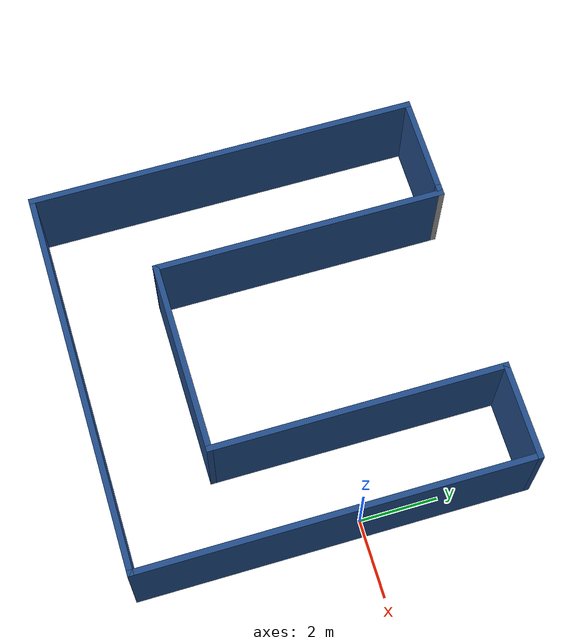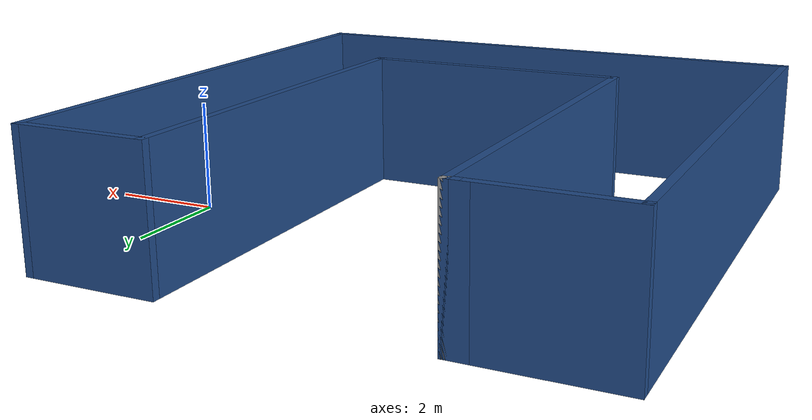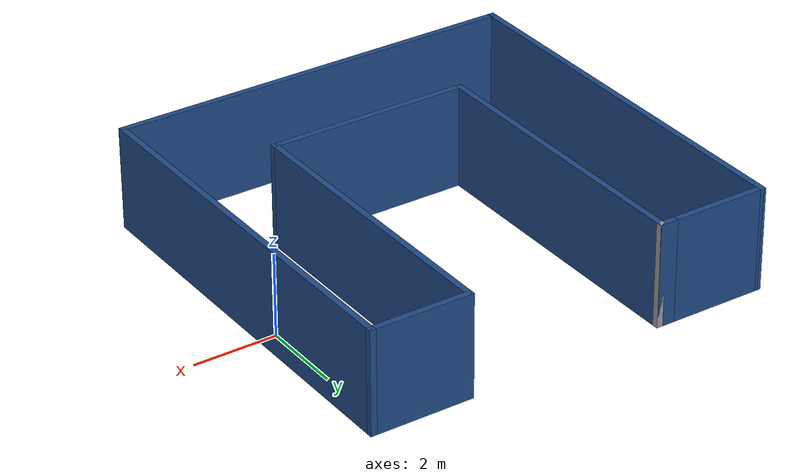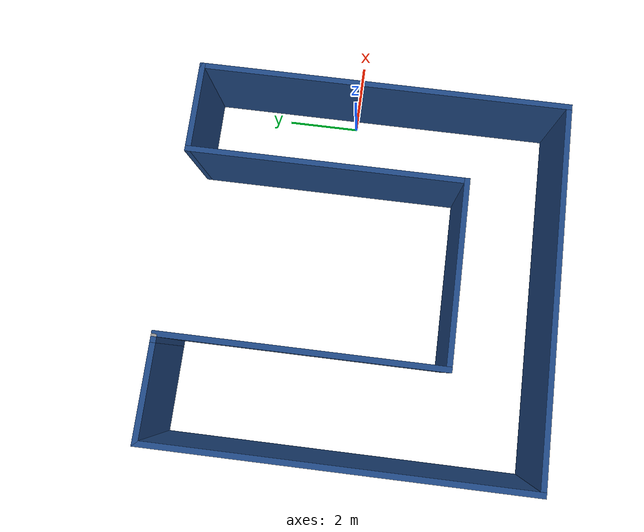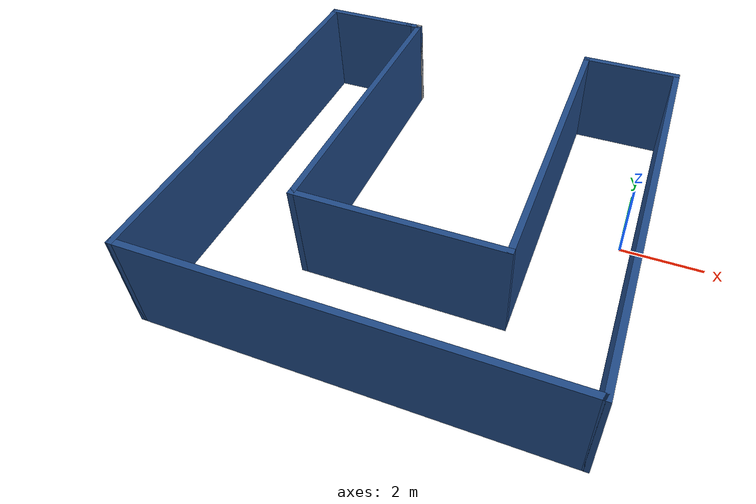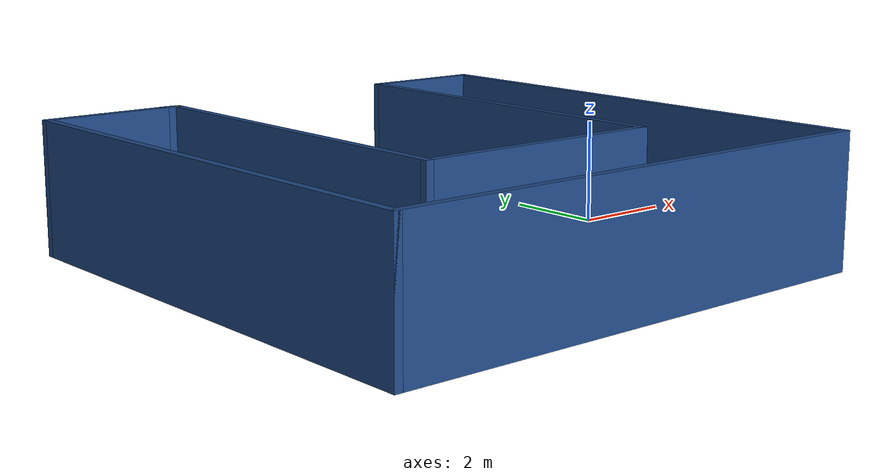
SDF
<?xml version='1.0'?>
<sdf version='1.7'>
  <model name='mybuilding'>
    <pose>-4.58469 -0.74124 0 0 -0 0</pose>
    <link name='Wall_10'>
      <collision name='Wall_10_Collision'>
        <geometry>
          <box>
            <size>7.5 0.15 2.5</size>
          </box>
        </geometry>
        <pose>0 0 1.25 0 -0 0</pose>
      </collision>
      <visual name='Wall_10_Visual'>
        <pose>0 0 1.25 0 -0 0</pose>
        <geometry>
          <box>
            <size>7.5 0.15 2.5</size>
          </box>
        </geometry>
        <material>
          <script>
            <uri>file://media/materials/scripts/gazebo.material</uri>
            <name>Gazebo/Grey</name>
          </script>
          <ambient>0.12549 0.290196 0.529412 1</ambient>
        </material>
        <meta>
          <layer>0</layer>
        </meta>
      </visual>
      <pose>2.575 1.25 0 0 -0 -1.5708</pose>
    </link>
    <link name='Wall_11'>
      <collision name='Wall_11_Collision'>
        <geometry>
          <box>
            <size>5 0.15 2.5</size>
          </box>
        </geometry>
        <pose>0 0 1.25 0 -0 0</pose>
      </collision>
      <visual name='Wall_11_Visual'>
        <pose>0 0 1.25 0 -0 0</pose>
        <geometry>
          <box>
            <size>5 0.15 2.5</size>
          </box>
        </geometry>
        <material>
          <script>
            <uri>file://media/materials/scripts/gazebo.material</uri>
            <name>Gazebo/Grey</name>
          </script>
          <ambient>0.12549 0.290196 0.529412 1</ambient>
        </material>
        <meta>
          <layer>0</layer>
        </meta>
      </visual>
      <pose>0.15 -2.425 0 0 -0 3.14159</pose>
    </link>
    <link name='Wall_12'>
      <collision name='Wall_12_Collision'>
        <geometry>
          <box>
            <size>7.5 0.15 2.5</size>
          </box>
        </geometry>
        <pose>0 0 1.25 0 -0 0</pose>
      </collision>
      <visual name='Wall_12_Visual'>
        <pose>0 0 1.25 0 -0 0</pose>
        <geometry>
          <box>
            <size>7.5 0.15 2.5</size>
          </box>
        </geometry>
        <material>
          <script>
            <uri>file://media/materials/scripts/gazebo.material</uri>
            <name>Gazebo/Grey</name>
          </script>
          <ambient>0.12549 0.290196 0.529412 1</ambient>
        </material>
        <meta>
          <layer>0</layer>
        </meta>
      </visual>
      <pose>-2.275 1.25 0 0 -0 1.5708</pose>
    </link>
    <link name='Wall_13'>
      <collision name='Wall_13_Collision'>
        <geometry>
          <box>
            <size>0.15 0.15 2.5</size>
          </box>
        </geometry>
        <pose>0 0 1.25 0 -0 0</pose>
      </collision>
      <visual name='Wall_13_Visual'>
        <pose>0 0 1.25 0 -0 0</pose>
        <geometry>
          <box>
            <size>0.15 0.15 2.5</size>
          </box>
        </geometry>
        <material>
          <script>
            <uri>file://media/materials/scripts/gazebo.material</uri>
            <name>Gazebo/Grey</name>
          </script>
          <ambient>1 1 1 1</ambient>
        </material>
        <meta>
          <layer>0</layer>
        </meta>
      </visual>
      <pose>-2.275 4.925 0 0 -0 0</pose>
    </link>
    <link name='Wall_14'>
      <collision name='Wall_14_Collision'>
        <geometry>
          <box>
            <size>0.45 0.15 2.5</size>
          </box>
        </geometry>
        <pose>0 0 1.25 0 -0 0</pose>
      </collision>
      <visual name='Wall_14_Visual'>
        <pose>0 0 1.25 0 -0 0</pose>
        <geometry>
          <box>
            <size>0.45 0.15 2.5</size>
          </box>
        </geometry>
        <material>
          <script>
            <uri>file://media/materials/scripts/gazebo.material</uri>
            <name>Gazebo/Grey</name>
          </script>
          <ambient>0.12549 0.290196 0.529412 1</ambient>
        </material>
        <meta>
          <layer>0</layer>
        </meta>
      </visual>
      <pose>-2.425 4.925 0 0 -0 3.14159</pose>
    </link>
    <link name='Wall_5'>
      <collision name='Wall_5_Collision'>
        <geometry>
          <box>
            <size>2.5 0.15 2.5</size>
          </box>
        </geometry>
        <pose>0 0 1.25 0 -0 0</pose>
      </collision>
      <visual name='Wall_5_Visual'>
        <pose>0 0 1.25 0 -0 0</pose>
        <geometry>
          <box>
            <size>2.5 0.15 2.5</size>
          </box>
        </geometry>
        <material>
          <script>
            <uri>file://media/materials/scripts/gazebo.material</uri>
            <name>Gazebo/Grey</name>
          </script>
          <ambient>0.12549 0.290196 0.529412 1</ambient>
        </material>
        <meta>
          <layer>0</layer>
        </meta>
      </visual>
      <pose>-3.75 4.925 0 0 -0 3.14159</pose>
    </link>
    <link name='Wall_6'>
      <collision name='Wall_6_Collision'>
        <geometry>
          <box>
            <size>10 0.15 2.5</size>
          </box>
        </geometry>
        <pose>0 0 1.25 0 -0 0</pose>
      </collision>
      <visual name='Wall_6_Visual'>
        <pose>0 0 1.25 0 -0 0</pose>
        <geometry>
          <box>
            <size>10 0.15 2.5</size>
          </box>
        </geometry>
        <material>
          <script>
            <uri>file://media/materials/scripts/gazebo.material</uri>
            <name>Gazebo/Grey</name>
          </script>
          <ambient>0.12549 0.290196 0.529412 1</ambient>
        </material>
        <meta>
          <layer>0</layer>
        </meta>
      </visual>
      <pose>-4.925 0 0 0 -0 -1.5708</pose>
    </link>
    <link name='Wall_7'>
      <collision name='Wall_7_Collision'>
        <geometry>
          <box>
            <size>10 0.15 2.5</size>
          </box>
        </geometry>
        <pose>0 0 1.25 0 -0 0</pose>
      </collision>
      <visual name='Wall_7_Visual'>
        <pose>0 0 1.25 0 -0 0</pose>
        <geometry>
          <box>
            <size>10 0.15 2.5</size>
          </box>
        </geometry>
        <material>
          <script>
            <uri>file://media/materials/scripts/gazebo.material</uri>
            <name>Gazebo/Grey</name>
          </script>
          <ambient>0.12549 0.290196 0.529412 1</ambient>
        </material>
        <meta>
          <layer>0</layer>
        </meta>
      </visual>
      <pose>0 -4.925 0 0 -0 0</pose>
    </link>
    <link name='Wall_8'>
      <collision name='Wall_8_Collision'>
        <geometry>
          <box>
            <size>10 0.15 2.5</size>
          </box>
        </geometry>
        <pose>0 0 1.25 0 -0 0</pose>
      </collision>
      <visual name='Wall_8_Visual'>
        <pose>0 0 1.25 0 -0 0</pose>
        <geometry>
          <box>
            <size>10 0.15 2.5</size>
          </box>
        </geometry>
        <material>
          <script>
            <uri>file://media/materials/scripts/gazebo.material</uri>
            <name>Gazebo/Grey</name>
          </script>
          <ambient>0.12549 0.290196 0.529412 1</ambient>
        </material>
        <meta>
          <layer>0</layer>
        </meta>
      </visual>
      <pose>4.925 0 0 0 -0 1.5708</pose>
    </link>
    <link name='Wall_9'>
      <collision name='Wall_9_Collision'>
        <geometry>
          <box>
            <size>2.5 0.15 2.5</size>
          </box>
        </geometry>
        <pose>0 0 1.25 0 -0 0</pose>
      </collision>
      <visual name='Wall_9_Visual'>
        <pose>0 0 1.25 0 -0 0</pose>
        <geometry>
          <box>
            <size>2.5 0.15 2.5</size>
          </box>
        </geometry>
        <material>
          <script>
            <uri>file://media/materials/scripts/gazebo.material</uri>
            <name>Gazebo/Grey</name>
          </script>
          <ambient>0.12549 0.290196 0.529412 1</ambient>
        </material>
        <meta>
          <layer>0</layer>
        </meta>
      </visual>
      <pose>3.75 4.925 0 0 -0 3.14159</pose>
    </link>
    <static>1</static>
  </model>
</sdf>
